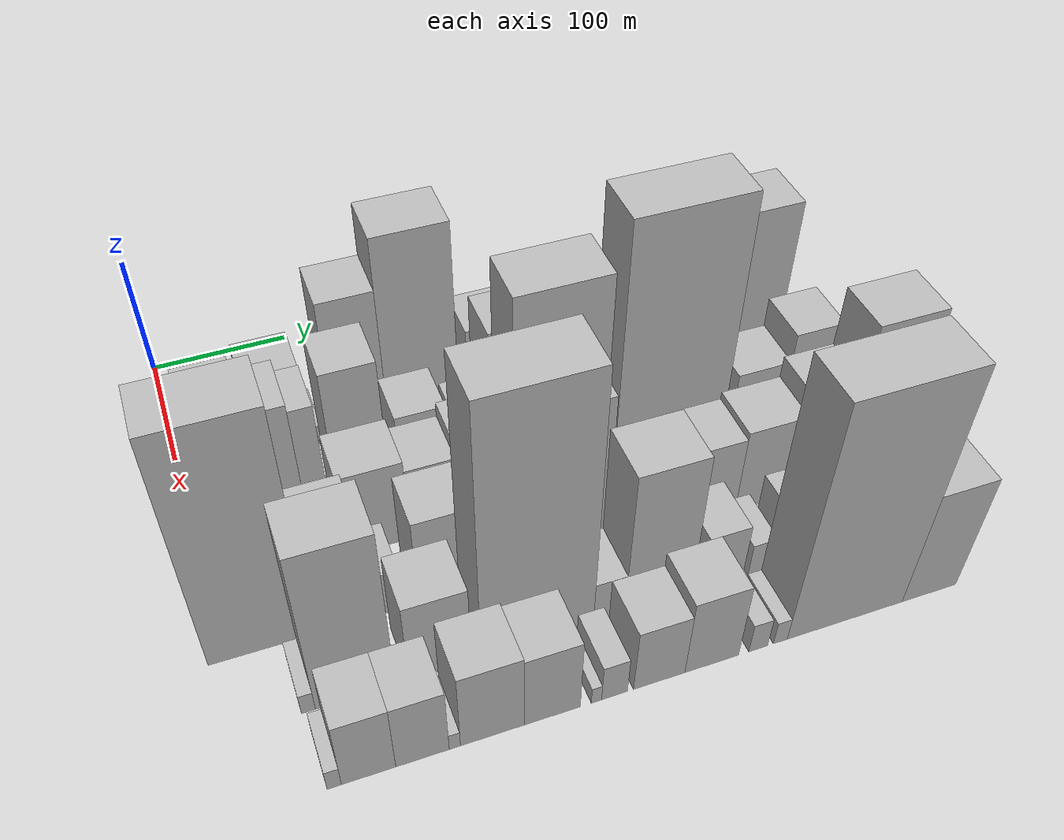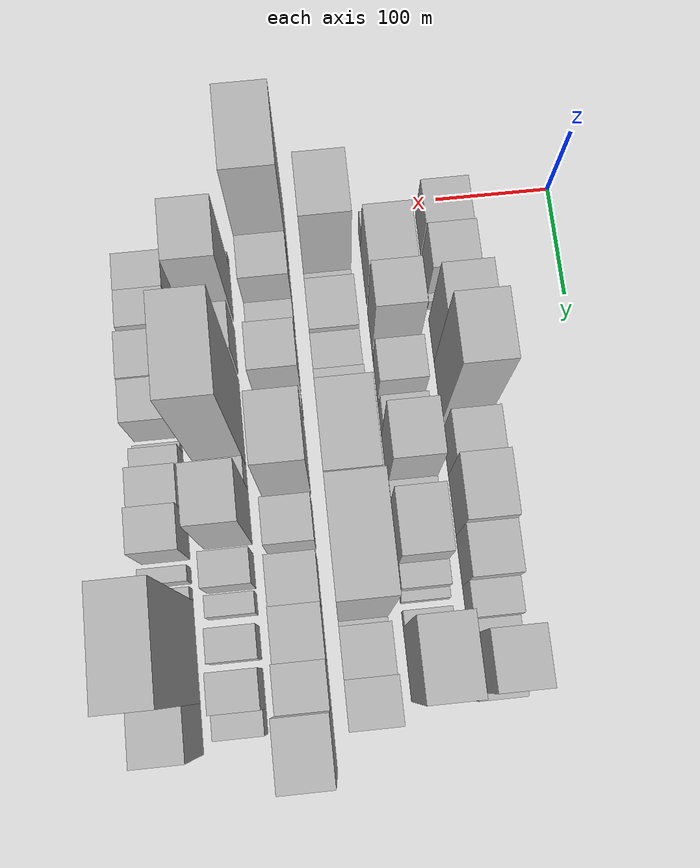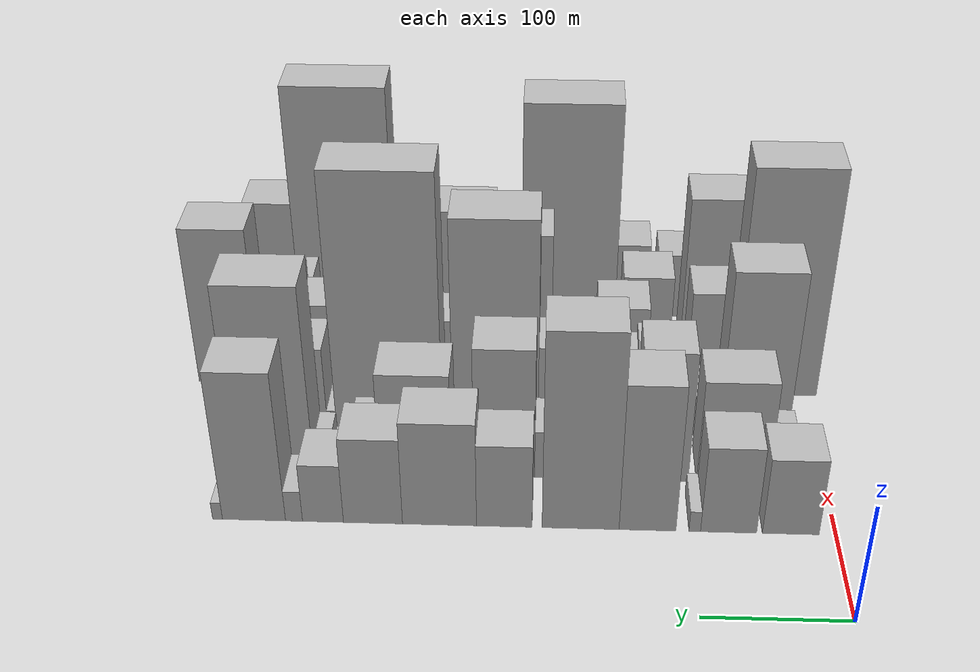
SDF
<sdf version="1.6">
 <world name="default">
  <model name="building_26">
   <static>1</static>
   <pose>100.0000 31.4561 0 0.000000 0.000000 0.000000</pose>
   <link name="link">
    <pose>0 0 33.00 0 0 0</pose>
    <collision name="collision"><geometry><box><size>40.0000 38.9810 66.0000</size></box></geometry></collision>
    <visual name="visual">
     <cast_shadows>0</cast_shadows>
     <geometry><box><size>40.0000 38.9810 66.0000</size></box></geometry>
     <material>
      <script>
       <uri>model://HANNAS_wall/materials/scripts</uri>
       <uri>model://HANNAS_wall/materials/textures</uri>
       <name>vrc/HANNAS_wall</name>
      </script>
     </material>
    </visual>
   </link>
  </model>
  <model name="building_27">
   <static>1</static>
   <pose>100.0000 74.3089 0 0.000000 0.000000 0.000000</pose>
   <link name="link">
    <pose>0 0 37.50 0 0 0</pose>
    <collision name="collision"><geometry><box><size>40.0000 38.7246 75.0000</size></box></geometry></collision>
    <visual name="visual">
     <cast_shadows>0</cast_shadows>
     <geometry><box><size>40.0000 38.7246 75.0000</size></box></geometry>
     <material>
      <script>
       <uri>model://HANNAS_wall/materials/scripts</uri>
       <uri>model://HANNAS_wall/materials/textures</uri>
       <name>vrc/HANNAS_wall</name>
      </script>
     </material>
    </visual>
   </link>
  </model>
  <model name="building_28">
   <static>1</static>
   <pose>100.0000 97.6655 0 0.000000 0.000000 0.000000</pose>
   <link name="link">
    <pose>0 0 9.00 0 0 0</pose>
    <collision name="collision"><geometry><box><size>40.0000 7.9885 18.0000</size></box></geometry></collision>
    <visual name="visual">
     <cast_shadows>0</cast_shadows>
     <geometry><box><size>40.0000 7.9885 18.0000</size></box></geometry>
     <material>
      <script>
       <uri>model://HANNAS_wall/materials/scripts</uri>
       <uri>model://HANNAS_wall/materials/textures</uri>
       <name>vrc/HANNAS_wall</name>
      </script>
     </material>
    </visual>
   </link>
  </model>
  <model name="building_29">
   <static>1</static>
   <pose>100.0000 130.3500 0 0.000000 0.000000 0.000000</pose>
   <link name="link">
    <pose>0 0 63.00 0 0 0</pose>
    <collision name="collision"><geometry><box><size>40.0000 39.3806 126.0000</size></box></geometry></collision>
    <visual name="visual">
     <cast_shadows>0</cast_shadows>
     <geometry><box><size>40.0000 39.3806 126.0000</size></box></geometry>
     <material>
      <script>
       <uri>model://HANNAS_wall/materials/scripts</uri>
       <uri>model://HANNAS_wall/materials/textures</uri>
       <name>vrc/HANNAS_wall</name>
      </script>
     </material>
    </visual>
   </link>
  </model>
  <model name="building_30">
   <static>1</static>
   <pose>100.0000 176.7575 0 0.000000 0.000000 0.000000</pose>
   <link name="link">
    <pose>0 0 84.00 0 0 0</pose>
    <collision name="collision"><geometry><box><size>40.0000 53.4345 168.0000</size></box></geometry></collision>
    <visual name="visual">
     <cast_shadows>0</cast_shadows>
     <geometry><box><size>40.0000 53.4345 168.0000</size></box></geometry>
     <material>
      <script>
       <uri>model://HANNAS_wall/materials/scripts</uri>
       <uri>model://HANNAS_wall/materials/textures</uri>
       <name>vrc/HANNAS_wall</name>
      </script>
     </material>
    </visual>
   </link>
  </model>
  <model name="building_31">
   <static>1</static>
   <pose>100.0000 229.8142 0 0.000000 0.000000 0.000000</pose>
   <link name="link">
    <pose>0 0 36.00 0 0 0</pose>
    <collision name="collision"><geometry><box><size>40.0000 38.6788 72.0000</size></box></geometry></collision>
    <visual name="visual">
     <cast_shadows>0</cast_shadows>
     <geometry><box><size>40.0000 38.6788 72.0000</size></box></geometry>
     <material>
      <script>
       <uri>model://HANNAS_wall/materials/scripts</uri>
       <uri>model://HANNAS_wall/materials/textures</uri>
       <name>vrc/HANNAS_wall</name>
      </script>
     </material>
    </visual>
   </link>
  </model>
  <model name="building_32">
   <static>1</static>
   <pose>100.0000 275.0135 0 0.000000 0.000000 0.000000</pose>
   <link name="link">
    <pose>0 0 45.00 0 0 0</pose>
    <collision name="collision"><geometry><box><size>40.0000 51.7199 90.0000</size></box></geometry></collision>
    <visual name="visual">
     <cast_shadows>0</cast_shadows>
     <geometry><box><size>40.0000 51.7199 90.0000</size></box></geometry>
     <material>
      <script>
       <uri>model://HANNAS_wall/materials/scripts</uri>
       <uri>model://HANNAS_wall/materials/textures</uri>
       <name>vrc/HANNAS_wall</name>
      </script>
     </material>
    </visual>
   </link>
  </model>
  <model name="building_33">
   <static>1</static>
   <pose>100.0000 321.5605 0 0.000000 0.000000 0.000000</pose>
   <link name="link">
    <pose>0 0 37.50 0 0 0</pose>
    <collision name="collision"><geometry><box><size>40.0000 41.3742 75.0000</size></box></geometry></collision>
    <visual name="visual">
     <cast_shadows>0</cast_shadows>
     <geometry><box><size>40.0000 41.3742 75.0000</size></box></geometry>
     <material>
      <script>
       <uri>model://HANNAS_wall/materials/scripts</uri>
       <uri>model://HANNAS_wall/materials/textures</uri>
       <name>vrc/HANNAS_wall</name>
      </script>
     </material>
    </visual>
   </link>
  </model>
  <model name="building_34">
   <static>1</static>
   <pose>100.0000 356.6126 0 0.000000 0.000000 0.000000</pose>
   <link name="link">
    <pose>0 0 25.50 0 0 0</pose>
    <collision name="collision"><geometry><box><size>40.0000 28.7300 51.0000</size></box></geometry></collision>
    <visual name="visual">
     <cast_shadows>0</cast_shadows>
     <geometry><box><size>40.0000 28.7300 51.0000</size></box></geometry>
     <material>
      <script>
       <uri>model://HANNAS_wall/materials/scripts</uri>
       <uri>model://HANNAS_wall/materials/textures</uri>
       <name>vrc/HANNAS_wall</name>
      </script>
     </material>
    </visual>
   </link>
  </model>
  <model name="building_35">
   <static>1</static>
   <pose>100.0000 376.9293 0 0.000000 0.000000 0.000000</pose>
   <link name="link">
    <pose>0 0 13.50 0 0 0</pose>
    <collision name="collision"><geometry><box><size>40.0000 11.9034 27.0000</size></box></geometry></collision>
    <visual name="visual">
     <cast_shadows>0</cast_shadows>
     <geometry><box><size>40.0000 11.9034 27.0000</size></box></geometry>
     <material>
      <script>
       <uri>model://HANNAS_wall/materials/scripts</uri>
       <uri>model://HANNAS_wall/materials/textures</uri>
       <name>vrc/HANNAS_wall</name>
      </script>
     </material>
    </visual>
   </link>
  </model>
  <model name="building_36">
   <static>1</static>
   <pose>100.0000 405.1092 0 0.000000 0.000000 0.000000</pose>
   <link name="link">
    <pose>0 0 64.50 0 0 0</pose>
    <collision name="collision"><geometry><box><size>40.0000 44.4563 129.0000</size></box></geometry></collision>
    <visual name="visual">
     <cast_shadows>0</cast_shadows>
     <geometry><box><size>40.0000 44.4563 129.0000</size></box></geometry>
     <material>
      <script>
       <uri>model://HANNAS_wall/materials/scripts</uri>
       <uri>model://HANNAS_wall/materials/textures</uri>
       <name>vrc/HANNAS_wall</name>
      </script>
     </material>
    </visual>
   </link>
  </model>
  <model name="building_37">
   <static>1</static>
   <pose>100.0000 430.8203 0 0.000000 0.000000 0.000000</pose>
   <link name="link">
    <pose>0 0 7.50 0 0 0</pose>
    <collision name="collision"><geometry><box><size>40.0000 6.9659 15.0000</size></box></geometry></collision>
    <visual name="visual">
     <cast_shadows>0</cast_shadows>
     <geometry><box><size>40.0000 6.9659 15.0000</size></box></geometry>
     <material>
      <script>
       <uri>model://HANNAS_wall/materials/scripts</uri>
       <uri>model://HANNAS_wall/materials/textures</uri>
       <name>vrc/HANNAS_wall</name>
      </script>
     </material>
    </visual>
   </link>
  </model>
  <model name="building_73">
   <static>1</static>
   <pose>152.0000 30.8943 0 0.000000 0.000000 0.000000</pose>
   <link name="link">
    <pose>0 0 18.00 0 0 0</pose>
    <collision name="collision"><geometry><box><size>40.0000 19.6783 36.0000</size></box></geometry></collision>
    <visual name="visual">
     <cast_shadows>0</cast_shadows>
     <geometry><box><size>40.0000 19.6783 36.0000</size></box></geometry>
     <material>
      <script>
       <uri>model://HANNAS_wall/materials/scripts</uri>
       <uri>model://HANNAS_wall/materials/textures</uri>
       <name>vrc/HANNAS_wall</name>
      </script>
     </material>
    </visual>
   </link>
  </model>
  <model name="building_74">
   <static>1</static>
   <pose>152.0000 66.7761 0 0.000000 0.000000 0.000000</pose>
   <link name="link">
    <pose>0 0 45.00 0 0 0</pose>
    <collision name="collision"><geometry><box><size>40.0000 52.0853 90.0000</size></box></geometry></collision>
    <visual name="visual">
     <cast_shadows>0</cast_shadows>
     <geometry><box><size>40.0000 52.0853 90.0000</size></box></geometry>
     <material>
      <script>
       <uri>model://HANNAS_wall/materials/scripts</uri>
       <uri>model://HANNAS_wall/materials/textures</uri>
       <name>vrc/HANNAS_wall</name>
      </script>
     </material>
    </visual>
   </link>
  </model>
  <model name="building_75">
   <static>1</static>
   <pose>152.0000 117.4997 0 0.000000 0.000000 0.000000</pose>
   <link name="link">
    <pose>0 0 57.00 0 0 0</pose>
    <collision name="collision"><geometry><box><size>40.0000 37.3618 114.0000</size></box></geometry></collision>
    <visual name="visual">
     <cast_shadows>0</cast_shadows>
     <geometry><box><size>40.0000 37.3618 114.0000</size></box></geometry>
     <material>
      <script>
       <uri>model://HANNAS_wall/materials/scripts</uri>
       <uri>model://HANNAS_wall/materials/textures</uri>
       <name>vrc/HANNAS_wall</name>
      </script>
     </material>
    </visual>
   </link>
  </model>
  <model name="building_76">
   <static>1</static>
   <pose>152.0000 139.8790 0 0.000000 0.000000 0.000000</pose>
   <link name="link">
    <pose>0 0 9.00 0 0 0</pose>
    <collision name="collision"><geometry><box><size>40.0000 7.3969 18.0000</size></box></geometry></collision>
    <visual name="visual">
     <cast_shadows>0</cast_shadows>
     <geometry><box><size>40.0000 7.3969 18.0000</size></box></geometry>
     <material>
      <script>
       <uri>model://HANNAS_wall/materials/scripts</uri>
       <uri>model://HANNAS_wall/materials/textures</uri>
       <name>vrc/HANNAS_wall</name>
      </script>
     </material>
    </visual>
   </link>
  </model>
  <model name="building_77">
   <static>1</static>
   <pose>152.0000 161.3551 0 0.000000 0.000000 0.000000</pose>
   <link name="link">
    <pose>0 0 30.00 0 0 0</pose>
    <collision name="collision"><geometry><box><size>40.0000 35.5554 60.0000</size></box></geometry></collision>
    <visual name="visual">
     <cast_shadows>0</cast_shadows>
     <geometry><box><size>40.0000 35.5554 60.0000</size></box></geometry>
     <material>
      <script>
       <uri>model://HANNAS_wall/materials/scripts</uri>
       <uri>model://HANNAS_wall/materials/textures</uri>
       <name>vrc/HANNAS_wall</name>
      </script>
     </material>
    </visual>
   </link>
  </model>
  <model name="building_78">
   <static>1</static>
   <pose>152.0000 182.4315 0 0.000000 0.000000 0.000000</pose>
   <link name="link">
    <pose>0 0 7.50 0 0 0</pose>
    <collision name="collision"><geometry><box><size>40.0000 6.5974 15.0000</size></box></geometry></collision>
    <visual name="visual">
     <cast_shadows>0</cast_shadows>
     <geometry><box><size>40.0000 6.5974 15.0000</size></box></geometry>
     <material>
      <script>
       <uri>model://HANNAS_wall/materials/scripts</uri>
       <uri>model://HANNAS_wall/materials/textures</uri>
       <name>vrc/HANNAS_wall</name>
      </script>
     </material>
    </visual>
   </link>
  </model>
  <model name="building_79">
   <static>1</static>
   <pose>152.0000 197.7746 0 0.000000 0.000000 0.000000</pose>
   <link name="link">
    <pose>0 0 21.00 0 0 0</pose>
    <collision name="collision"><geometry><box><size>40.0000 24.0887 42.0000</size></box></geometry></collision>
    <visual name="visual">
     <cast_shadows>0</cast_shadows>
     <geometry><box><size>40.0000 24.0887 42.0000</size></box></geometry>
     <material>
      <script>
       <uri>model://HANNAS_wall/materials/scripts</uri>
       <uri>model://HANNAS_wall/materials/textures</uri>
       <name>vrc/HANNAS_wall</name>
      </script>
     </material>
    </visual>
   </link>
  </model>
  <model name="building_80">
   <static>1</static>
   <pose>152.0000 231.9363 0 0.000000 0.000000 0.000000</pose>
   <link name="link">
    <pose>0 0 57.00 0 0 0</pose>
    <collision name="collision"><geometry><box><size>40.0000 44.2348 114.0000</size></box></geometry></collision>
    <visual name="visual">
     <cast_shadows>0</cast_shadows>
     <geometry><box><size>40.0000 44.2348 114.0000</size></box></geometry>
     <material>
      <script>
       <uri>model://HANNAS_wall/materials/scripts</uri>
       <uri>model://HANNAS_wall/materials/textures</uri>
       <name>vrc/HANNAS_wall</name>
      </script>
     </material>
    </visual>
   </link>
  </model>
  <model name="building_81">
   <static>1</static>
   <pose>152.0000 262.1048 0 0.000000 0.000000 0.000000</pose>
   <link name="link">
    <pose>0 0 15.00 0 0 0</pose>
    <collision name="collision"><geometry><box><size>40.0000 16.1022 30.0000</size></box></geometry></collision>
    <visual name="visual">
     <cast_shadows>0</cast_shadows>
     <geometry><box><size>40.0000 16.1022 30.0000</size></box></geometry>
     <material>
      <script>
       <uri>model://HANNAS_wall/materials/scripts</uri>
       <uri>model://HANNAS_wall/materials/textures</uri>
       <name>vrc/HANNAS_wall</name>
      </script>
     </material>
    </visual>
   </link>
  </model>
  <model name="building_82">
   <static>1</static>
   <pose>152.0000 296.4405 0 0.000000 0.000000 0.000000</pose>
   <link name="link">
    <pose>0 0 45.00 0 0 0</pose>
    <collision name="collision"><geometry><box><size>40.0000 52.5691 90.0000</size></box></geometry></collision>
    <visual name="visual">
     <cast_shadows>0</cast_shadows>
     <geometry><box><size>40.0000 52.5691 90.0000</size></box></geometry>
     <material>
      <script>
       <uri>model://HANNAS_wall/materials/scripts</uri>
       <uri>model://HANNAS_wall/materials/textures</uri>
       <name>vrc/HANNAS_wall</name>
      </script>
     </material>
    </visual>
   </link>
  </model>
  <model name="building_83">
   <static>1</static>
   <pose>152.0000 332.6719 0 0.000000 0.000000 0.000000</pose>
   <link name="link">
    <pose>0 0 19.50 0 0 0</pose>
    <collision name="collision"><geometry><box><size>40.0000 19.8937 39.0000</size></box></geometry></collision>
    <visual name="visual">
     <cast_shadows>0</cast_shadows>
     <geometry><box><size>40.0000 19.8937 39.0000</size></box></geometry>
     <material>
      <script>
       <uri>model://HANNAS_wall/materials/scripts</uri>
       <uri>model://HANNAS_wall/materials/textures</uri>
       <name>vrc/HANNAS_wall</name>
      </script>
     </material>
    </visual>
   </link>
  </model>
  <model name="building_84">
   <static>1</static>
   <pose>152.0000 347.0228 0 0.000000 0.000000 0.000000</pose>
   <link name="link">
    <pose>0 0 9.00 0 0 0</pose>
    <collision name="collision"><geometry><box><size>40.0000 8.8081 18.0000</size></box></geometry></collision>
    <visual name="visual">
     <cast_shadows>0</cast_shadows>
     <geometry><box><size>40.0000 8.8081 18.0000</size></box></geometry>
     <material>
      <script>
       <uri>model://HANNAS_wall/materials/scripts</uri>
       <uri>model://HANNAS_wall/materials/textures</uri>
       <name>vrc/HANNAS_wall</name>
      </script>
     </material>
    </visual>
   </link>
  </model>
  <model name="building_85">
   <static>1</static>
   <pose>152.0000 364.4241 0 0.000000 0.000000 0.000000</pose>
   <link name="link">
    <pose>0 0 12.00 0 0 0</pose>
    <collision name="collision"><geometry><box><size>40.0000 11.9944 24.0000</size></box></geometry></collision>
    <visual name="visual">
     <cast_shadows>0</cast_shadows>
     <geometry><box><size>40.0000 11.9944 24.0000</size></box></geometry>
     <material>
      <script>
       <uri>model://HANNAS_wall/materials/scripts</uri>
       <uri>model://HANNAS_wall/materials/textures</uri>
       <name>vrc/HANNAS_wall</name>
      </script>
     </material>
    </visual>
   </link>
  </model>
  <model name="building_86">
   <static>1</static>
   <pose>152.0000 399.9036 0 0.000000 0.000000 0.000000</pose>
   <link name="link">
    <pose>0 0 81.00 0 0 0</pose>
    <collision name="collision"><geometry><box><size>40.0000 58.9646 162.0000</size></box></geometry></collision>
    <visual name="visual">
     <cast_shadows>0</cast_shadows>
     <geometry><box><size>40.0000 58.9646 162.0000</size></box></geometry>
     <material>
      <script>
       <uri>model://HANNAS_wall/materials/scripts</uri>
       <uri>model://HANNAS_wall/materials/textures</uri>
       <name>vrc/HANNAS_wall</name>
      </script>
     </material>
    </visual>
   </link>
  </model>
  <model name="building_128">
   <static>1</static>
   <pose>204.0000 46.5002 0 0.000000 0.000000 0.000000</pose>
   <link name="link">
    <pose>0 0 73.50 0 0 0</pose>
    <collision name="collision"><geometry><box><size>40.0000 51.8772 147.0000</size></box></geometry></collision>
    <visual name="visual">
     <cast_shadows>0</cast_shadows>
     <geometry><box><size>40.0000 51.8772 147.0000</size></box></geometry>
     <material>
      <script>
       <uri>model://HANNAS_wall/materials/scripts</uri>
       <uri>model://HANNAS_wall/materials/textures</uri>
       <name>vrc/HANNAS_wall</name>
      </script>
     </material>
    </visual>
   </link>
  </model>
  <model name="building_129">
   <static>1</static>
   <pose>204.0000 82.4492 0 0.000000 0.000000 0.000000</pose>
   <link name="link">
    <pose>0 0 18.00 0 0 0</pose>
    <collision name="collision"><geometry><box><size>40.0000 20.0208 36.0000</size></box></geometry></collision>
    <visual name="visual">
     <cast_shadows>0</cast_shadows>
     <geometry><box><size>40.0000 20.0208 36.0000</size></box></geometry>
     <material>
      <script>
       <uri>model://HANNAS_wall/materials/scripts</uri>
       <uri>model://HANNAS_wall/materials/textures</uri>
       <name>vrc/HANNAS_wall</name>
      </script>
     </material>
    </visual>
   </link>
  </model>
  <model name="building_130">
   <static>1</static>
   <pose>204.0000 113.9391 0 0.000000 0.000000 0.000000</pose>
   <link name="link">
    <pose>0 0 37.50 0 0 0</pose>
    <collision name="collision"><geometry><box><size>40.0000 42.9590 75.0000</size></box></geometry></collision>
    <visual name="visual">
     <cast_shadows>0</cast_shadows>
     <geometry><box><size>40.0000 42.9590 75.0000</size></box></geometry>
     <material>
      <script>
       <uri>model://HANNAS_wall/materials/scripts</uri>
       <uri>model://HANNAS_wall/materials/textures</uri>
       <name>vrc/HANNAS_wall</name>
      </script>
     </material>
    </visual>
   </link>
  </model>
  <model name="building_131">
   <static>1</static>
   <pose>204.0000 152.3040 0 0.000000 0.000000 0.000000</pose>
   <link name="link">
    <pose>0 0 33.00 0 0 0</pose>
    <collision name="collision"><geometry><box><size>40.0000 33.7708 66.0000</size></box></geometry></collision>
    <visual name="visual">
     <cast_shadows>0</cast_shadows>
     <geometry><box><size>40.0000 33.7708 66.0000</size></box></geometry>
     <material>
      <script>
       <uri>model://HANNAS_wall/materials/scripts</uri>
       <uri>model://HANNAS_wall/materials/textures</uri>
       <name>vrc/HANNAS_wall</name>
      </script>
     </material>
    </visual>
   </link>
  </model>
  <model name="building_132">
   <static>1</static>
   <pose>204.0000 188.8216 0 0.000000 0.000000 0.000000</pose>
   <link name="link">
    <pose>0 0 39.00 0 0 0</pose>
    <collision name="collision"><geometry><box><size>40.0000 39.2644 78.0000</size></box></geometry></collision>
    <visual name="visual">
     <cast_shadows>0</cast_shadows>
     <geometry><box><size>40.0000 39.2644 78.0000</size></box></geometry>
     <material>
      <script>
       <uri>model://HANNAS_wall/materials/scripts</uri>
       <uri>model://HANNAS_wall/materials/textures</uri>
       <name>vrc/HANNAS_wall</name>
      </script>
     </material>
    </visual>
   </link>
  </model>
  <model name="building_133">
   <static>1</static>
   <pose>204.0000 240.5272 0 0.000000 0.000000 0.000000</pose>
   <link name="link">
    <pose>0 0 93.00 0 0 0</pose>
    <collision name="collision"><geometry><box><size>40.0000 64.1467 186.0000</size></box></geometry></collision>
    <visual name="visual">
     <cast_shadows>0</cast_shadows>
     <geometry><box><size>40.0000 64.1467 186.0000</size></box></geometry>
     <material>
      <script>
       <uri>model://HANNAS_wall/materials/scripts</uri>
       <uri>model://HANNAS_wall/materials/textures</uri>
       <name>vrc/HANNAS_wall</name>
      </script>
     </material>
    </visual>
   </link>
  </model>
  <model name="building_134">
   <static>1</static>
   <pose>204.0000 320.9016 0 0.000000 0.000000 0.000000</pose>
   <link name="link">
    <pose>0 0 111.00 0 0 0</pose>
    <collision name="collision"><geometry><box><size>40.0000 80.6020 222.0000</size></box></geometry></collision>
    <visual name="visual">
     <cast_shadows>0</cast_shadows>
     <geometry><box><size>40.0000 80.6020 222.0000</size></box></geometry>
     <material>
      <script>
       <uri>model://HANNAS_wall/materials/scripts</uri>
       <uri>model://HANNAS_wall/materials/textures</uri>
       <name>vrc/HANNAS_wall</name>
      </script>
     </material>
    </visual>
   </link>
  </model>
  <model name="building_135">
   <static>1</static>
   <pose>204.0000 364.5917 0 0.000000 0.000000 0.000000</pose>
   <link name="link">
    <pose>0 0 7.50 0 0 0</pose>
    <collision name="collision"><geometry><box><size>40.0000 6.7782 15.0000</size></box></geometry></collision>
    <visual name="visual">
     <cast_shadows>0</cast_shadows>
     <geometry><box><size>40.0000 6.7782 15.0000</size></box></geometry>
     <material>
      <script>
       <uri>model://HANNAS_wall/materials/scripts</uri>
       <uri>model://HANNAS_wall/materials/textures</uri>
       <name>vrc/HANNAS_wall</name>
      </script>
     </material>
    </visual>
   </link>
  </model>
  <model name="building_136">
   <static>1</static>
   <pose>204.0000 387.6134 0 0.000000 0.000000 0.000000</pose>
   <link name="link">
    <pose>0 0 36.00 0 0 0</pose>
    <collision name="collision"><geometry><box><size>40.0000 39.2651 72.0000</size></box></geometry></collision>
    <visual name="visual">
     <cast_shadows>0</cast_shadows>
     <geometry><box><size>40.0000 39.2651 72.0000</size></box></geometry>
     <material>
      <script>
       <uri>model://HANNAS_wall/materials/scripts</uri>
       <uri>model://HANNAS_wall/materials/textures</uri>
       <name>vrc/HANNAS_wall</name>
      </script>
     </material>
    </visual>
   </link>
  </model>
  <model name="building_137">
   <static>1</static>
   <pose>204.0000 425.3925 0 0.000000 0.000000 0.000000</pose>
   <link name="link">
    <pose>0 0 48.00 0 0 0</pose>
    <collision name="collision"><geometry><box><size>40.0000 36.2931 96.0000</size></box></geometry></collision>
    <visual name="visual">
     <cast_shadows>0</cast_shadows>
     <geometry><box><size>40.0000 36.2931 96.0000</size></box></geometry>
     <material>
      <script>
       <uri>model://HANNAS_wall/materials/scripts</uri>
       <uri>model://HANNAS_wall/materials/textures</uri>
       <name>vrc/HANNAS_wall</name>
      </script>
     </material>
    </visual>
   </link>
  </model>
  <model name="building_171">
   <static>1</static>
   <pose>256.0000 25.1772 0 0.000000 0.000000 0.000000</pose>
   <link name="link">
    <pose>0 0 100.50 0 0 0</pose>
    <collision name="collision"><geometry><box><size>40.0000 66.0241 201.0000</size></box></geometry></collision>
    <visual name="visual">
     <cast_shadows>0</cast_shadows>
     <geometry><box><size>40.0000 66.0241 201.0000</size></box></geometry>
     <material>
      <script>
       <uri>model://HANNAS_wall/materials/scripts</uri>
       <uri>model://HANNAS_wall/materials/textures</uri>
       <name>vrc/HANNAS_wall</name>
      </script>
     </material>
    </visual>
   </link>
  </model>
  <model name="building_172">
   <static>1</static>
   <pose>256.0000 76.2517 0 0.000000 0.000000 0.000000</pose>
   <link name="link">
    <pose>0 0 46.50 0 0 0</pose>
    <collision name="collision"><geometry><box><size>40.0000 36.1249 93.0000</size></box></geometry></collision>
    <visual name="visual">
     <cast_shadows>0</cast_shadows>
     <geometry><box><size>40.0000 36.1249 93.0000</size></box></geometry>
     <material>
      <script>
       <uri>model://HANNAS_wall/materials/scripts</uri>
       <uri>model://HANNAS_wall/materials/textures</uri>
       <name>vrc/HANNAS_wall</name>
      </script>
     </material>
    </visual>
   </link>
  </model>
  <model name="building_173">
   <static>1</static>
   <pose>256.0000 104.7353 0 0.000000 0.000000 0.000000</pose>
   <link name="link">
    <pose>0 0 19.50 0 0 0</pose>
    <collision name="collision"><geometry><box><size>40.0000 20.8423 39.0000</size></box></geometry></collision>
    <visual name="visual">
     <cast_shadows>0</cast_shadows>
     <geometry><box><size>40.0000 20.8423 39.0000</size></box></geometry>
     <material>
      <script>
       <uri>model://HANNAS_wall/materials/scripts</uri>
       <uri>model://HANNAS_wall/materials/textures</uri>
       <name>vrc/HANNAS_wall</name>
      </script>
     </material>
    </visual>
   </link>
  </model>
  <model name="building_174">
   <static>1</static>
   <pose>256.0000 144.9128 0 0.000000 0.000000 0.000000</pose>
   <link name="link">
    <pose>0 0 39.00 0 0 0</pose>
    <collision name="collision"><geometry><box><size>40.0000 39.5128 78.0000</size></box></geometry></collision>
    <visual name="visual">
     <cast_shadows>0</cast_shadows>
     <geometry><box><size>40.0000 39.5128 78.0000</size></box></geometry>
     <material>
      <script>
       <uri>model://HANNAS_wall/materials/scripts</uri>
       <uri>model://HANNAS_wall/materials/textures</uri>
       <name>vrc/HANNAS_wall</name>
      </script>
     </material>
    </visual>
   </link>
  </model>
  <model name="building_175">
   <static>1</static>
   <pose>256.0000 182.1042 0 0.000000 0.000000 0.000000</pose>
   <link name="link">
    <pose>0 0 15.00 0 0 0</pose>
    <collision name="collision"><geometry><box><size>40.0000 16.8702 30.0000</size></box></geometry></collision>
    <visual name="visual">
     <cast_shadows>0</cast_shadows>
     <geometry><box><size>40.0000 16.8702 30.0000</size></box></geometry>
     <material>
      <script>
       <uri>model://HANNAS_wall/materials/scripts</uri>
       <uri>model://HANNAS_wall/materials/textures</uri>
       <name>vrc/HANNAS_wall</name>
      </script>
     </material>
    </visual>
   </link>
  </model>
  <model name="building_176">
   <static>1</static>
   <pose>256.0000 226.7608 0 0.000000 0.000000 0.000000</pose>
   <link name="link">
    <pose>0 0 70.50 0 0 0</pose>
    <collision name="collision"><geometry><box><size>40.0000 54.4430 141.0000</size></box></geometry></collision>
    <visual name="visual">
     <cast_shadows>0</cast_shadows>
     <geometry><box><size>40.0000 54.4430 141.0000</size></box></geometry>
     <material>
      <script>
       <uri>model://HANNAS_wall/materials/scripts</uri>
       <uri>model://HANNAS_wall/materials/textures</uri>
       <name>vrc/HANNAS_wall</name>
      </script>
     </material>
    </visual>
   </link>
  </model>
  <model name="building_177">
   <static>1</static>
   <pose>256.0000 281.7454 0 0.000000 0.000000 0.000000</pose>
   <link name="link">
    <pose>0 0 31.50 0 0 0</pose>
    <collision name="collision"><geometry><box><size>40.0000 37.5263 63.0000</size></box></geometry></collision>
    <visual name="visual">
     <cast_shadows>0</cast_shadows>
     <geometry><box><size>40.0000 37.5263 63.0000</size></box></geometry>
     <material>
      <script>
       <uri>model://HANNAS_wall/materials/scripts</uri>
       <uri>model://HANNAS_wall/materials/textures</uri>
       <name>vrc/HANNAS_wall</name>
      </script>
     </material>
    </visual>
   </link>
  </model>
  <model name="building_178">
   <static>1</static>
   <pose>256.0000 328.4249 0 0.000000 0.000000 0.000000</pose>
   <link name="link">
    <pose>0 0 34.50 0 0 0</pose>
    <collision name="collision"><geometry><box><size>40.0000 39.8327 69.0000</size></box></geometry></collision>
    <visual name="visual">
     <cast_shadows>0</cast_shadows>
     <geometry><box><size>40.0000 39.8327 69.0000</size></box></geometry>
     <material>
      <script>
       <uri>model://HANNAS_wall/materials/scripts</uri>
       <uri>model://HANNAS_wall/materials/textures</uri>
       <name>vrc/HANNAS_wall</name>
      </script>
     </material>
    </visual>
   </link>
  </model>
  <model name="building_179">
   <static>1</static>
   <pose>256.0000 369.6944 0 0.000000 0.000000 0.000000</pose>
   <link name="link">
    <pose>0 0 37.50 0 0 0</pose>
    <collision name="collision"><geometry><box><size>40.0000 42.7061 75.0000</size></box></geometry></collision>
    <visual name="visual">
     <cast_shadows>0</cast_shadows>
     <geometry><box><size>40.0000 42.7061 75.0000</size></box></geometry>
     <material>
      <script>
       <uri>model://HANNAS_wall/materials/scripts</uri>
       <uri>model://HANNAS_wall/materials/textures</uri>
       <name>vrc/HANNAS_wall</name>
      </script>
     </material>
    </visual>
   </link>
  </model>
  <model name="building_180">
   <static>1</static>
   <pose>256.0000 409.2136 0 0.000000 0.000000 0.000000</pose>
   <link name="link">
    <pose>0 0 46.50 0 0 0</pose>
    <collision name="collision"><geometry><box><size>40.0000 36.3324 93.0000</size></box></geometry></collision>
    <visual name="visual">
     <cast_shadows>0</cast_shadows>
     <geometry><box><size>40.0000 36.3324 93.0000</size></box></geometry>
     <material>
      <script>
       <uri>model://HANNAS_wall/materials/scripts</uri>
       <uri>model://HANNAS_wall/materials/textures</uri>
       <name>vrc/HANNAS_wall</name>
      </script>
     </material>
    </visual>
   </link>
  </model>
  <model name="building_181">
   <static>1</static>
   <pose>256.0000 452.2988 0 0.000000 0.000000 0.000000</pose>
   <link name="link">
    <pose>0 0 70.50 0 0 0</pose>
    <collision name="collision"><geometry><box><size>40.0000 49.8380 141.0000</size></box></geometry></collision>
    <visual name="visual">
     <cast_shadows>0</cast_shadows>
     <geometry><box><size>40.0000 49.8380 141.0000</size></box></geometry>
     <material>
      <script>
       <uri>model://HANNAS_wall/materials/scripts</uri>
       <uri>model://HANNAS_wall/materials/textures</uri>
       <name>vrc/HANNAS_wall</name>
      </script>
     </material>
    </visual>
   </link>
  </model>
  <model name="building_216">
   <static>1</static>
   <pose>308.0000 42.1295 0 0.000000 0.000000 0.000000</pose>
   <link name="link">
    <pose>0 0 9.00 0 0 0</pose>
    <collision name="collision"><geometry><box><size>40.0000 8.4546 18.0000</size></box></geometry></collision>
    <visual name="visual">
     <cast_shadows>0</cast_shadows>
     <geometry><box><size>40.0000 8.4546 18.0000</size></box></geometry>
     <material>
      <script>
       <uri>model://HANNAS_wall/materials/scripts</uri>
       <uri>model://HANNAS_wall/materials/textures</uri>
       <name>vrc/HANNAS_wall</name>
      </script>
     </material>
    </visual>
   </link>
  </model>
  <model name="building_217">
   <static>1</static>
   <pose>308.0000 70.9468 0 0.000000 0.000000 0.000000</pose>
   <link name="link">
    <pose>0 0 72.00 0 0 0</pose>
    <collision name="collision"><geometry><box><size>40.0000 49.1801 144.0000</size></box></geometry></collision>
    <visual name="visual">
     <cast_shadows>0</cast_shadows>
     <geometry><box><size>40.0000 49.1801 144.0000</size></box></geometry>
     <material>
      <script>
       <uri>model://HANNAS_wall/materials/scripts</uri>
       <uri>model://HANNAS_wall/materials/textures</uri>
       <name>vrc/HANNAS_wall</name>
      </script>
     </material>
    </visual>
   </link>
  </model>
  <model name="building_218">
   <static>1</static>
   <pose>308.0000 123.4427 0 0.000000 0.000000 0.000000</pose>
   <link name="link">
    <pose>0 0 36.00 0 0 0</pose>
    <collision name="collision"><geometry><box><size>40.0000 39.8116 72.0000</size></box></geometry></collision>
    <visual name="visual">
     <cast_shadows>0</cast_shadows>
     <geometry><box><size>40.0000 39.8116 72.0000</size></box></geometry>
     <material>
      <script>
       <uri>model://HANNAS_wall/materials/scripts</uri>
       <uri>model://HANNAS_wall/materials/textures</uri>
       <name>vrc/HANNAS_wall</name>
      </script>
     </material>
    </visual>
   </link>
  </model>
  <model name="building_219">
   <static>1</static>
   <pose>308.0000 186.4296 0 0.000000 0.000000 0.000000</pose>
   <link name="link">
    <pose>0 0 111.00 0 0 0</pose>
    <collision name="collision"><geometry><box><size>40.0000 74.1623 222.0000</size></box></geometry></collision>
    <visual name="visual">
     <cast_shadows>0</cast_shadows>
     <geometry><box><size>40.0000 74.1623 222.0000</size></box></geometry>
     <material>
      <script>
       <uri>model://HANNAS_wall/materials/scripts</uri>
       <uri>model://HANNAS_wall/materials/textures</uri>
       <name>vrc/HANNAS_wall</name>
      </script>
     </material>
    </visual>
   </link>
  </model>
  <model name="building_220">
   <static>1</static>
   <pose>308.0000 234.0682 0 0.000000 0.000000 0.000000</pose>
   <link name="link">
    <pose>0 0 19.50 0 0 0</pose>
    <collision name="collision"><geometry><box><size>40.0000 21.1149 39.0000</size></box></geometry></collision>
    <visual name="visual">
     <cast_shadows>0</cast_shadows>
     <geometry><box><size>40.0000 21.1149 39.0000</size></box></geometry>
     <material>
      <script>
       <uri>model://HANNAS_wall/materials/scripts</uri>
       <uri>model://HANNAS_wall/materials/textures</uri>
       <name>vrc/HANNAS_wall</name>
      </script>
     </material>
    </visual>
   </link>
  </model>
  <model name="building_221">
   <static>1</static>
   <pose>308.0000 267.6188 0 0.000000 0.000000 0.000000</pose>
   <link name="link">
    <pose>0 0 64.50 0 0 0</pose>
    <collision name="collision"><geometry><box><size>40.0000 45.9863 129.0000</size></box></geometry></collision>
    <visual name="visual">
     <cast_shadows>0</cast_shadows>
     <geometry><box><size>40.0000 45.9863 129.0000</size></box></geometry>
     <material>
      <script>
       <uri>model://HANNAS_wall/materials/scripts</uri>
       <uri>model://HANNAS_wall/materials/textures</uri>
       <name>vrc/HANNAS_wall</name>
      </script>
     </material>
    </visual>
   </link>
  </model>
  <model name="building_222">
   <static>1</static>
   <pose>308.0000 312.8745 0 0.000000 0.000000 0.000000</pose>
   <link name="link">
    <pose>0 0 25.50 0 0 0</pose>
    <collision name="collision"><geometry><box><size>40.0000 28.5250 51.0000</size></box></geometry></collision>
    <visual name="visual">
     <cast_shadows>0</cast_shadows>
     <geometry><box><size>40.0000 28.5250 51.0000</size></box></geometry>
     <material>
      <script>
       <uri>model://HANNAS_wall/materials/scripts</uri>
       <uri>model://HANNAS_wall/materials/textures</uri>
       <name>vrc/HANNAS_wall</name>
      </script>
     </material>
    </visual>
   </link>
  </model>
  <model name="building_223">
   <static>1</static>
   <pose>308.0000 339.8821 0 0.000000 0.000000 0.000000</pose>
   <link name="link">
    <pose>0 0 15.00 0 0 0</pose>
    <collision name="collision"><geometry><box><size>40.0000 17.4902 30.0000</size></box></geometry></collision>
    <visual name="visual">
     <cast_shadows>0</cast_shadows>
     <geometry><box><size>40.0000 17.4902 30.0000</size></box></geometry>
     <material>
      <script>
       <uri>model://HANNAS_wall/materials/scripts</uri>
       <uri>model://HANNAS_wall/materials/textures</uri>
       <name>vrc/HANNAS_wall</name>
      </script>
     </material>
    </visual>
   </link>
  </model>
  <model name="building_224">
   <static>1</static>
   <pose>308.0000 371.0199 0 0.000000 0.000000 0.000000</pose>
   <link name="link">
    <pose>0 0 22.50 0 0 0</pose>
    <collision name="collision"><geometry><box><size>40.0000 26.7855 45.0000</size></box></geometry></collision>
    <visual name="visual">
     <cast_shadows>0</cast_shadows>
     <geometry><box><size>40.0000 26.7855 45.0000</size></box></geometry>
     <material>
      <script>
       <uri>model://HANNAS_wall/materials/scripts</uri>
       <uri>model://HANNAS_wall/materials/textures</uri>
       <name>vrc/HANNAS_wall</name>
      </script>
     </material>
    </visual>
   </link>
  </model>
  <model name="building_225">
   <static>1</static>
   <pose>308.0000 407.0521 0 0.000000 0.000000 0.000000</pose>
   <link name="link">
    <pose>0 0 30.00 0 0 0</pose>
    <collision name="collision"><geometry><box><size>40.0000 31.2788 60.0000</size></box></geometry></collision>
    <visual name="visual">
     <cast_shadows>0</cast_shadows>
     <geometry><box><size>40.0000 31.2788 60.0000</size></box></geometry>
     <material>
      <script>
       <uri>model://HANNAS_wall/materials/scripts</uri>
       <uri>model://HANNAS_wall/materials/textures</uri>
       <name>vrc/HANNAS_wall</name>
      </script>
     </material>
    </visual>
   </link>
  </model>
  <model name="building_226">
   <static>1</static>
   <pose>308.0000 432.5048 0 0.000000 0.000000 0.000000</pose>
   <link name="link">
    <pose>0 0 19.50 0 0 0</pose>
    <collision name="collision"><geometry><box><size>40.0000 19.6267 39.0000</size></box></geometry></collision>
    <visual name="visual">
     <cast_shadows>0</cast_shadows>
     <geometry><box><size>40.0000 19.6267 39.0000</size></box></geometry>
     <material>
      <script>
       <uri>model://HANNAS_wall/materials/scripts</uri>
       <uri>model://HANNAS_wall/materials/textures</uri>
       <name>vrc/HANNAS_wall</name>
      </script>
     </material>
    </visual>
   </link>
  </model>
  <model name="building_262">
   <static>1</static>
   <pose>360.0000 44.7138 0 0.000000 0.000000 0.000000</pose>
   <link name="link">
    <pose>0 0 9.00 0 0 0</pose>
    <collision name="collision"><geometry><box><size>40.0000 8.2553 18.0000</size></box></geometry></collision>
    <visual name="visual">
     <cast_shadows>0</cast_shadows>
     <geometry><box><size>40.0000 8.2553 18.0000</size></box></geometry>
     <material>
      <script>
       <uri>model://HANNAS_wall/materials/scripts</uri>
       <uri>model://HANNAS_wall/materials/textures</uri>
       <name>vrc/HANNAS_wall</name>
      </script>
     </material>
    </visual>
   </link>
  </model>
  <model name="building_263">
   <static>1</static>
   <pose>360.0000 64.7266 0 0.000000 0.000000 0.000000</pose>
   <link name="link">
    <pose>0 0 30.00 0 0 0</pose>
    <collision name="collision"><geometry><box><size>40.0000 31.7702 60.0000</size></box></geometry></collision>
    <visual name="visual">
     <cast_shadows>0</cast_shadows>
     <geometry><box><size>40.0000 31.7702 60.0000</size></box></geometry>
     <material>
      <script>
       <uri>model://HANNAS_wall/materials/scripts</uri>
       <uri>model://HANNAS_wall/materials/textures</uri>
       <name>vrc/HANNAS_wall</name>
      </script>
     </material>
    </visual>
   </link>
  </model>
  <model name="building_264">
   <static>1</static>
   <pose>360.0000 96.5453 0 0.000000 0.000000 0.000000</pose>
   <link name="link">
    <pose>0 0 30.00 0 0 0</pose>
    <collision name="collision"><geometry><box><size>40.0000 31.8672 60.0000</size></box></geometry></collision>
    <visual name="visual">
     <cast_shadows>0</cast_shadows>
     <geometry><box><size>40.0000 31.8672 60.0000</size></box></geometry>
     <material>
      <script>
       <uri>model://HANNAS_wall/materials/scripts</uri>
       <uri>model://HANNAS_wall/materials/textures</uri>
       <name>vrc/HANNAS_wall</name>
      </script>
     </material>
    </visual>
   </link>
  </model>
  <model name="building_265">
   <static>1</static>
   <pose>360.0000 115.8672 0 0.000000 0.000000 0.000000</pose>
   <link name="link">
    <pose>0 0 7.50 0 0 0</pose>
    <collision name="collision"><geometry><box><size>40.0000 6.7765 15.0000</size></box></geometry></collision>
    <visual name="visual">
     <cast_shadows>0</cast_shadows>
     <geometry><box><size>40.0000 6.7765 15.0000</size></box></geometry>
     <material>
      <script>
       <uri>model://HANNAS_wall/materials/scripts</uri>
       <uri>model://HANNAS_wall/materials/textures</uri>
       <name>vrc/HANNAS_wall</name>
      </script>
     </material>
    </visual>
   </link>
  </model>
  <model name="building_266">
   <static>1</static>
   <pose>360.0000 138.8072 0 0.000000 0.000000 0.000000</pose>
   <link name="link">
    <pose>0 0 34.50 0 0 0</pose>
    <collision name="collision"><geometry><box><size>40.0000 39.1035 69.0000</size></box></geometry></collision>
    <visual name="visual">
     <cast_shadows>0</cast_shadows>
     <geometry><box><size>40.0000 39.1035 69.0000</size></box></geometry>
     <material>
      <script>
       <uri>model://HANNAS_wall/materials/scripts</uri>
       <uri>model://HANNAS_wall/materials/textures</uri>
       <name>vrc/HANNAS_wall</name>
      </script>
     </material>
    </visual>
   </link>
  </model>
  <model name="building_267">
   <static>1</static>
   <pose>360.0000 176.0209 0 0.000000 0.000000 0.000000</pose>
   <link name="link">
    <pose>0 0 33.00 0 0 0</pose>
    <collision name="collision"><geometry><box><size>40.0000 35.3241 66.0000</size></box></geometry></collision>
    <visual name="visual">
     <cast_shadows>0</cast_shadows>
     <geometry><box><size>40.0000 35.3241 66.0000</size></box></geometry>
     <material>
      <script>
       <uri>model://HANNAS_wall/materials/scripts</uri>
       <uri>model://HANNAS_wall/materials/textures</uri>
       <name>vrc/HANNAS_wall</name>
      </script>
     </material>
    </visual>
   </link>
  </model>
  <model name="building_268">
   <static>1</static>
   <pose>360.0000 203.9672 0 0.000000 0.000000 0.000000</pose>
   <link name="link">
    <pose>0 0 7.50 0 0 0</pose>
    <collision name="collision"><geometry><box><size>40.0000 6.5685 15.0000</size></box></geometry></collision>
    <visual name="visual">
     <cast_shadows>0</cast_shadows>
     <geometry><box><size>40.0000 6.5685 15.0000</size></box></geometry>
     <material>
      <script>
       <uri>model://HANNAS_wall/materials/scripts</uri>
       <uri>model://HANNAS_wall/materials/textures</uri>
       <name>vrc/HANNAS_wall</name>
      </script>
     </material>
    </visual>
   </link>
  </model>
  <model name="building_269">
   <static>1</static>
   <pose>360.0000 215.5958 0 0.000000 0.000000 0.000000</pose>
   <link name="link">
    <pose>0 0 16.50 0 0 0</pose>
    <collision name="collision"><geometry><box><size>40.0000 16.6886 33.0000</size></box></geometry></collision>
    <visual name="visual">
     <cast_shadows>0</cast_shadows>
     <geometry><box><size>40.0000 16.6886 33.0000</size></box></geometry>
     <material>
      <script>
       <uri>model://HANNAS_wall/materials/scripts</uri>
       <uri>model://HANNAS_wall/materials/textures</uri>
       <name>vrc/HANNAS_wall</name>
      </script>
     </material>
    </visual>
   </link>
  </model>
  <model name="building_270">
   <static>1</static>
   <pose>360.0000 244.8400 0 0.000000 0.000000 0.000000</pose>
   <link name="link">
    <pose>0 0 28.50 0 0 0</pose>
    <collision name="collision"><geometry><box><size>40.0000 33.7997 57.0000</size></box></geometry></collision>
    <visual name="visual">
     <cast_shadows>0</cast_shadows>
     <geometry><box><size>40.0000 33.7997 57.0000</size></box></geometry>
     <material>
      <script>
       <uri>model://HANNAS_wall/materials/scripts</uri>
       <uri>model://HANNAS_wall/materials/textures</uri>
       <name>vrc/HANNAS_wall</name>
      </script>
     </material>
    </visual>
   </link>
  </model>
  <model name="building_271">
   <static>1</static>
   <pose>360.0000 279.8079 0 0.000000 0.000000 0.000000</pose>
   <link name="link">
    <pose>0 0 34.50 0 0 0</pose>
    <collision name="collision"><geometry><box><size>40.0000 36.1361 69.0000</size></box></geometry></collision>
    <visual name="visual">
     <cast_shadows>0</cast_shadows>
     <geometry><box><size>40.0000 36.1361 69.0000</size></box></geometry>
     <material>
      <script>
       <uri>model://HANNAS_wall/materials/scripts</uri>
       <uri>model://HANNAS_wall/materials/textures</uri>
       <name>vrc/HANNAS_wall</name>
      </script>
     </material>
    </visual>
   </link>
  </model>
  <model name="building_272">
   <static>1</static>
   <pose>360.0000 311.3603 0 0.000000 0.000000 0.000000</pose>
   <link name="link">
    <pose>0 0 13.50 0 0 0</pose>
    <collision name="collision"><geometry><box><size>40.0000 12.9688 27.0000</size></box></geometry></collision>
    <visual name="visual">
     <cast_shadows>0</cast_shadows>
     <geometry><box><size>40.0000 12.9688 27.0000</size></box></geometry>
     <material>
      <script>
       <uri>model://HANNAS_wall/materials/scripts</uri>
       <uri>model://HANNAS_wall/materials/textures</uri>
       <name>vrc/HANNAS_wall</name>
      </script>
     </material>
    </visual>
   </link>
  </model>
  <model name="building_273">
   <static>1</static>
   <pose>360.0000 326.6089 0 0.000000 0.000000 0.000000</pose>
   <link name="link">
    <pose>0 0 10.50 0 0 0</pose>
    <collision name="collision"><geometry><box><size>40.0000 9.5285 21.0000</size></box></geometry></collision>
    <visual name="visual">
     <cast_shadows>0</cast_shadows>
     <geometry><box><size>40.0000 9.5285 21.0000</size></box></geometry>
     <material>
      <script>
       <uri>model://HANNAS_wall/materials/scripts</uri>
       <uri>model://HANNAS_wall/materials/textures</uri>
       <name>vrc/HANNAS_wall</name>
      </script>
     </material>
    </visual>
   </link>
  </model>
  <model name="building_274">
   <static>1</static>
   <pose>360.0000 372.4300 0 0.000000 0.000000 0.000000</pose>
   <link name="link">
    <pose>0 0 103.50 0 0 0</pose>
    <collision name="collision"><geometry><box><size>40.0000 82.1138 207.0000</size></box></geometry></collision>
    <visual name="visual">
     <cast_shadows>0</cast_shadows>
     <geometry><box><size>40.0000 82.1138 207.0000</size></box></geometry>
     <material>
      <script>
       <uri>model://HANNAS_wall/materials/scripts</uri>
       <uri>model://HANNAS_wall/materials/textures</uri>
       <name>vrc/HANNAS_wall</name>
      </script>
     </material>
    </visual>
   </link>
  </model>
  <model name="building_275">
   <static>1</static>
   <pose>360.0000 433.3243 0 0.000000 0.000000 0.000000</pose>
   <link name="link">
    <pose>0 0 51.00 0 0 0</pose>
    <collision name="collision"><geometry><box><size>40.0000 39.6748 102.0000</size></box></geometry></collision>
    <visual name="visual">
     <cast_shadows>0</cast_shadows>
     <geometry><box><size>40.0000 39.6748 102.0000</size></box></geometry>
     <material>
      <script>
       <uri>model://HANNAS_wall/materials/scripts</uri>
       <uri>model://HANNAS_wall/materials/textures</uri>
       <name>vrc/HANNAS_wall</name>
      </script>
     </material>
    </visual>
   </link>
  </model>
 </world>
</sdf>
